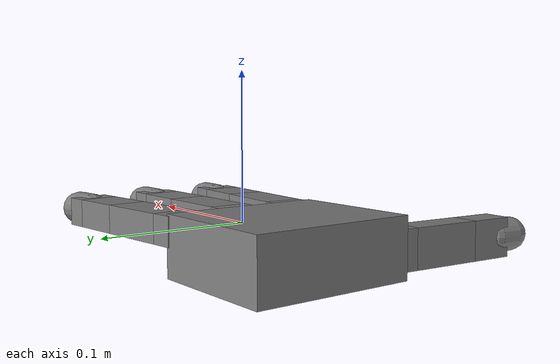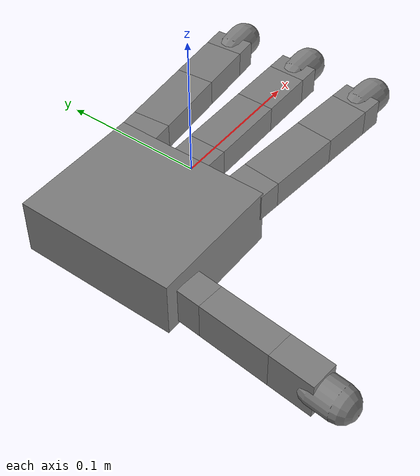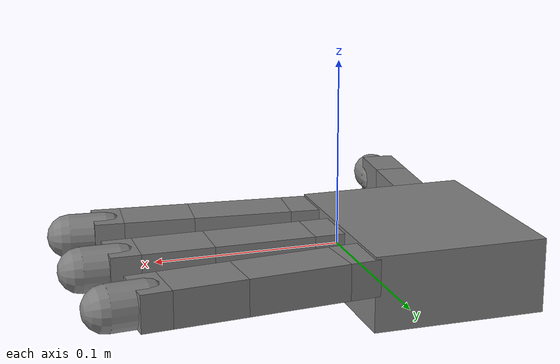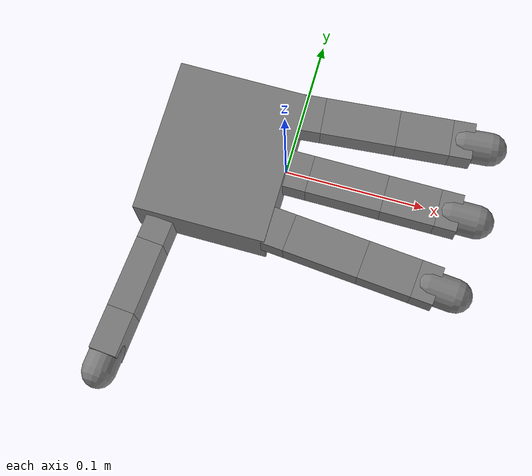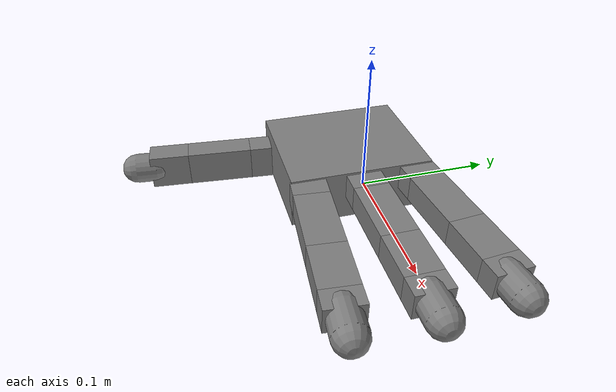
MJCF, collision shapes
<mujoco model="allegro_right">
  <compiler angle="radian" autolimits="true"/>

  <default>
    <default class="allegro_right">
      <joint axis="0 1 0" damping=".1" armature="0.001"/>
      <position kp="0.1" kv="0.1"/>
      <geom density="800"/>

      <default class="visual">
        <geom type="mesh" contype="0" conaffinity="0" group="2" material="black"/>
        <default class="palm_visual">
          <geom mesh="base_link"/>
        </default>
        <default class="base_visual">
          <geom mesh="link_0.0"/>
        </default>
        <default class="proximal_visual">
          <geom mesh="link_1.0"/>
        </default>
        <default class="medial_visual">
          <geom mesh="link_2.0"/>
        </default>
        <default class="distal_visual">
          <geom mesh="link_3.0"/>
        </default>
        <default class="fingertip_visual">
          <geom pos="0 0 0.0267" material="white" mesh="link_3.0_tip"/>
        </default>
        <default class="thumbtip_visual">
          <geom pos="0 0 0.0423" material="white" mesh="link_15.0_tip"/>
        </default>
      </default>

      <default class="collision">
        <geom group="3" type="box" mass="0"/>
        <default class="palm_collision">
          <geom size="0.0204 0.0565 0.0475" pos="-0.0093 0 -0.0475"/>
        </default>
        <default class="base_collision">
          <geom size="0.0098 0.01375 0.0082" pos="0 0 0.0082"/>
          <default class="thumb_base_collision">
            <geom size="0.0179 0.017 0.02275" pos="-0.0179 0.009 0.0145"/>
          </default>
        </default>
        <default class="proximal_collision">
          <geom size="0.0098 0.01375 0.027" pos="0 0 0.027"/>
          <default class="thumb_proximal_collision">
            <geom size="0.0098 0.01375 0.00885" pos="0 0 0.00885"/>
          </default>
        </default>
        <default class="medial_collision">
          <geom size="0.0098 0.01375 0.0192" pos="0 0 0.0192"/>
          <default class="thumb_medial_collision">
            <geom size="0.0098 0.01375 0.0257" pos="0 0 0.0257"/>
          </default>
        </default>
        <default class="distal_collision">
          <geom size="0.0098 0.01375 0.008" pos="0 0 0.008"/>
          <default class="thumb_distal_collision">
            <geom size="0.0098 0.01375 0.0157" pos="0 0 0.0157"/>
          </default>
        </default>
        <default class="fingertip_collision">
          <geom type="capsule" size="0.012 0.01" pos="0 0 0.019"/>
          <default class="thumbtip_collision">
            <geom type="capsule" size="0.012 0.008" pos="0 0 0.035"/>
          </default>
        </default>
      </default>

      <default class="base">
        <joint axis="0 0 1" range="-0.47 0.47"/>
        <position ctrlrange="-0.47 0.47"/>
      </default>
      <default class="proximal">
        <joint range="-0.196 1.61"/>
        <position ctrlrange="-0.196 1.61"/>
      </default>
      <default class="medial">
        <joint range="-0.174 1.709"/>
        <position ctrlrange="-0.174 1.709"/>
      </default>
      <default class="distal">
        <joint range="-0.227 1.618"/>
        <position ctrlrange="-0.227 1.618"/>
      </default>
      <default class="thumb_base">
        <joint axis="-1 0 0" range="0.263 1.396"/>
        <position ctrlrange="0.263 1.396"/>
      </default>
      <default class="thumb_proximal">
        <joint axis="0 0 1" range="-0.105 2.163"/>
        <position ctrlrange="-0.105 2.163"/>
      </default>
      <default class="thumb_medial">
        <joint range="-0.189 1.644"/>
        <position ctrlrange="-0.189 1.644"/>
      </default>
      <default class="thumb_distal">
        <joint range="-0.162 1.719"/>
        <position ctrlrange="-0.162 1.719"/>
      </default>
    </default>
  </default>

  <asset>
    <material name="black" rgba="0.2 0.2 0.2 1"/>
    <material name="white" rgba="0.9 0.9 0.9 1"/>
    <mesh file="./hand/assets/base_link.stl" name="base_link"/>
    <mesh file="./hand/assets/link_0.0.stl" name="link_0.0"/>
    <mesh file="./hand/assets/link_1.0.stl" name="link_1.0"/>
    <mesh file="./hand/assets/link_2.0.stl" name="link_2.0"/>
    <mesh file="./hand/assets/link_3.0.stl" name="link_3.0"/>
    <mesh file="./hand/assets/link_3.0_tip.stl" name="link_3.0_tip"/>
    <mesh file="./hand/assets/link_12.0_right.stl" name="link_12.0_right"/>
    <mesh file="./hand/assets/link_13.0.stl" name="link_13.0"/>
    <mesh file="./hand/assets/link_14.0.stl" name="link_14.0"/>
    <mesh file="./hand/assets/link_15.0.stl" name="link_15.0"/>
    <mesh file="./hand/assets/link_15.0_tip.stl" name="link_15.0_tip"/>
  </asset>

  <worldbody>
    <body name="palm" quat="0 1 0 1" childclass="allegro_right">
      <geom class="palm_visual" mesh="base_link"/>
      <geom class="palm_collision" name="palm" friction="0.5"/>

      <!-- First finger -->
      <body name="ff_base" pos="0 0.0435 -0.001542" quat="0.999048 -0.0436194 0 0">
        <joint name="ffj0" class="base"/>
        <geom class="base_visual"/>
        <geom class="base_collision" name="ff_base"/>
        <body name="ff_proximal" pos="0 0 0.0164">
          <joint name="ffj1" class="proximal"/>
          <geom class="proximal_visual"/>
          <geom class="proximal_collision" name="ff_proximal"/>
          <body name="ff_medial" pos="0 0 0.054">
            <joint name="ffj2" class="medial"/>
            <geom class="medial_visual"/>
            <geom class="medial_collision" name="ff_medial"/>
            <body name="ff_distal" pos="0 0 0.0384">
              <joint name="ffj3" class="distal"/>
              <geom class="distal_visual"/>
              <geom class="distal_collision" name="ff_distal"/>
              <body name="ff_tip">
                <geom class="fingertip_visual"/>
                <geom class="fingertip_collision" name="fingertip0"/>
                <site rgba="0.5 0.0 0.0 1" size="0.001" pos="0 0 0.0384" name="ftp_0"/>
              </body>
            </body>
          </body>
        </body>
      </body>
      <!-- Middle finger -->
      <body name="mf_base" pos="0 0 0.0007">
        <joint name="mfj0" class="base"/>
        <geom class="base_visual"/>
        <geom class="base_collision" name="mf_base"/>
        <body name="mf_proximal" pos="0 0 0.0164">
          <joint name="mfj1" class="proximal"/>
          <geom class="proximal_visual"/>
          <geom class="proximal_collision" name="mf_proximal"/>
          <body name="mf_medial" pos="0 0 0.054">
            <joint name="mfj2" class="medial"/>
            <geom class="medial_visual"/>
            <geom class="medial_collision" name="mf_medial"/>
            <body name="mf_distal" pos="0 0 0.0384">
              <joint name="mfj3" class="distal"/>
              <geom class="distal_visual"/>
              <geom class="distal_collision" name="mf_distal"/>
              <body name="mf_tip">
                <geom class="fingertip_visual"/>
                <geom class="fingertip_collision" name="fingertip1"/>
                <site rgba="0.5 0.0 0.0 1" size="0.001" pos="0 0 0.0384" name="ftp_1"/>
              </body>
            </body>
          </body>
        </body>
      </body>
      <!-- Ring finger -->
      <body name="rf_base" pos="0 -0.0435 -0.001542" quat="0.999048 0.0436194 0 0">
        <joint name="rfj0" class="base"/>
        <geom class="base_visual"/>
        <geom class="base_collision" name="rf_base"/>
        <body name="rf_proximal" pos="0 0 0.0164">
          <joint name="rfj1" class="proximal"/>
          <geom class="proximal_visual"/>
          <geom class="proximal_collision" name="rf_proximal"/>
          <body name="rf_medial" pos="0 0 0.054">
            <joint name="rfj2" class="medial"/>
            <geom class="medial_visual"/>
            <geom class="medial_collision" name="rf_medial"/>
            <body name="rf_distal" pos="0 0 0.0384">
              <joint name="rfj3" class="distal"/>
              <geom class="distal_visual"/>
              <geom class="distal_collision" name="rf_distal"/>
              <body name="rf_tip">
                <geom class="fingertip_visual"/>
                <geom class="fingertip_collision" name="fingertip2"/>
                <site rgba="0.5 0.0 0.0 1" size="0.001" pos="0 0 0.0384" name="ftp_2"/>
              </body>
            </body>
          </body>
        </body>
      </body>
      <!-- Thumb -->
      <body name="th_base" pos="-0.0182 0.019333 -0.045987" quat="0.477714 -0.521334 -0.521334 -0.477714">
        <joint name="thj0" class="thumb_base"/>
        <geom class="visual" mesh="link_12.0_right"/>
        <geom class="thumb_base_collision" name="th_base"/>
        <body name="th_proximal" pos="-0.027 0.005 0.0399">
          <joint name="thj1" class="thumb_proximal"/>
          <geom class="visual" mesh="link_13.0"/>
          <geom class="thumb_proximal_collision" name="th_proximal"/>
          <body name="th_medial" pos="0 0 0.0177">
            <joint name="thj2" class="thumb_medial"/>
            <geom class="visual" mesh="link_14.0"/>
            <geom class="thumb_medial_collision" name="th_medial"/>
            <body name="th_distal" pos="0 0 0.0514">
              <joint name="thj3" class="thumb_distal"/>
              <geom class="visual" mesh="link_15.0"/>
              <geom class="thumb_distal_collision" name="th_distal"/>
              <body name="th_tip">
                <geom class="thumbtip_visual"/>
                <geom class="thumbtip_collision" name="fingertip3"/>
                <site rgba="0.5 0.0 0.0 1" size="0.001" pos="0 0 0.054" name="ftp_3"/>
              </body>
            </body>
          </body>
        </body>
      </body>
    </body>
  </worldbody>

  <contact>
    <exclude body1="palm" body2="ff_base"/>
    <exclude body1="palm" body2="mf_base"/>
    <exclude body1="palm" body2="rf_base"/>
    <exclude body1="palm" body2="th_base"/>
    <exclude body1="palm" body2="th_proximal"/>
  </contact>

  <actuator>
    <position name="ffa0" joint="ffj0" class="base" kp="1"/>
    <position name="ffa1" joint="ffj1" class="proximal" kp="1"/>
    <position name="ffa2" joint="ffj2" class="medial" kp="1"/>
    <position name="ffa3" joint="ffj3" class="distal" kp="1"/>
    <position name="mfa0" joint="mfj0" class="base" kp="1"/>
    <position name="mfa1" joint="mfj1" class="proximal" kp="1"/>
    <position name="mfa2" joint="mfj2" class="medial" kp="1"/>
    <position name="mfa3" joint="mfj3" class="distal" kp="1"/>
    <position name="rfa0" joint="rfj0" class="base" kp="1"/>
    <position name="rfa1" joint="rfj1" class="proximal" kp="1"/>
    <position name="rfa2" joint="rfj2" class="medial" kp="1"/>
    <position name="rfa3" joint="rfj3" class="distal" kp="1"/>
    <position name="tha0" joint="thj0" class="thumb_base" kp="1"/>
    <position name="tha1" joint="thj1" class="thumb_proximal" kp="1"/>
    <position name="tha2" joint="thj2" class="thumb_medial" kp="1"/>
    <position name="tha3" joint="thj3" class="thumb_distal" kp="1"/>
  </actuator>

</mujoco>
